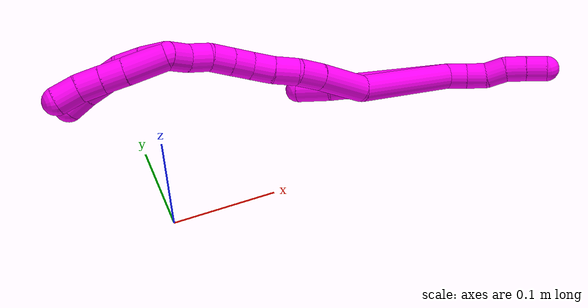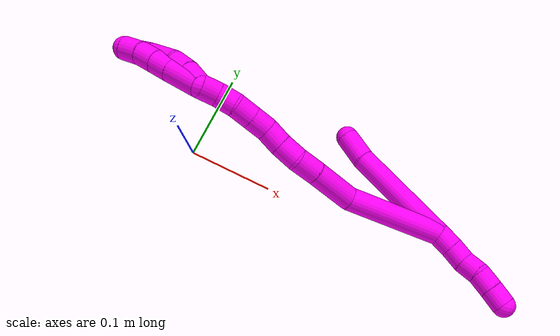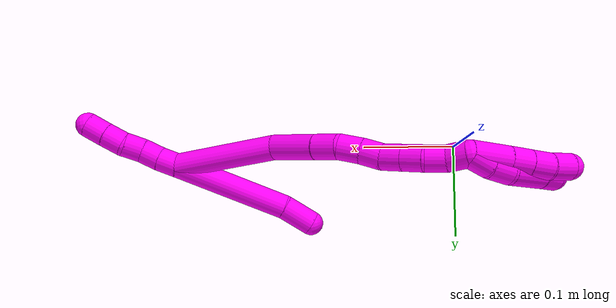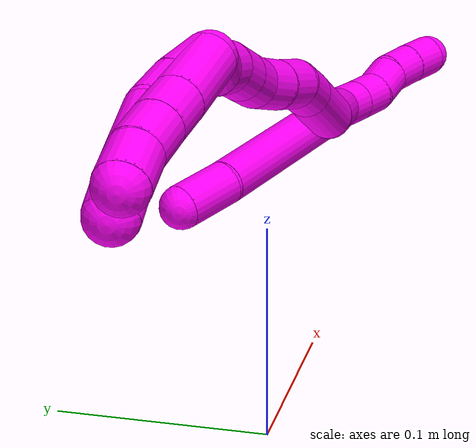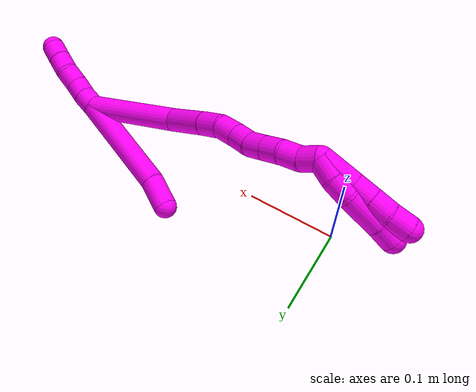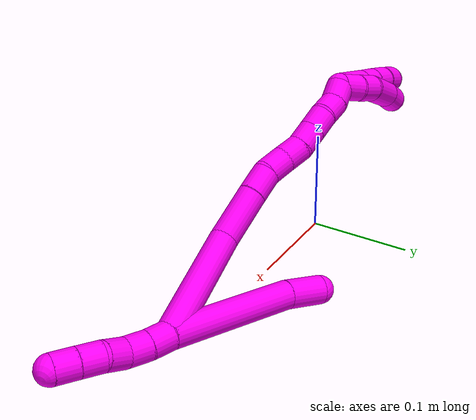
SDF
<sdf version="1.7">
 <world name="default">
  <model name="10">
   <static>0</static>
   <link name="10">
    <collision name="collision-cylinder-e_1_2_8">
     <pose>-0.012785 0.02831 -0.049547 -2.62249 -0.220404 0.789632</pose>
     <geometry><cylinder><radius>0.0125</radius><length>0.116959</length></cylinder></geometry>
     <surface>
      <friction><ode><mu>1.16</mu><mu2>1.16</mu2><slip1>0</slip1><slip2>0</slip2></ode></friction>
      <contact><ode><kp>1e+06</kp><kd>1</kd><max_vel>0</max_vel><min_depth>0.001</min_depth></ode></contact>
     </surface>
    </collision>
    <visual name="visual-cylinder-e_1_2_8">
     <pose>-0.012785 0.02831 -0.049547 -2.62249 -0.220404 0.789632</pose>
     <geometry><cylinder><radius>0.0125</radius><length>0.116959</length></cylinder></geometry>
     <material><ambient>1 0 0.964706 1</ambient></material>
    </visual>
    <collision name="collision-cylinder-e_2_8_6">
     <pose>-0.029997 0.066822 -0.111312 -2.44583 -0.271275 0.719904</pose>
     <geometry><cylinder><radius>0.0125</radius><length>0.033041</length></cylinder></geometry>
     <surface>
      <friction><ode><mu>1.16</mu><mu2>1.16</mu2><slip1>0</slip1><slip2>0</slip2></ode></friction>
      <contact><ode><kp>1e+06</kp><kd>1</kd><max_vel>0</max_vel><min_depth>0.001</min_depth></ode></contact>
     </surface>
    </collision>
    <visual name="visual-cylinder-e_2_8_6">
     <pose>-0.029997 0.066822 -0.111312 -2.44583 -0.271275 0.719904</pose>
     <geometry><cylinder><radius>0.0125</radius><length>0.033041</length></cylinder></geometry>
     <material><ambient>1 0 0.964706 1</ambient></material>
    </visual>
    <collision name="collision-cylinder-e_1_2_9">
     <pose>0.00311 -0.003947 0.008646 0.428244 0.316248 0.069321</pose>
     <geometry><cylinder><radius>0.0125</radius><length>0.02</length></cylinder></geometry>
     <surface>
      <friction><ode><mu>1.16</mu><mu2>1.16</mu2><slip1>0</slip1><slip2>0</slip2></ode></friction>
      <contact><ode><kp>1e+06</kp><kd>1</kd><max_vel>0</max_vel><min_depth>0.001</min_depth></ode></contact>
     </surface>
    </collision>
    <visual name="visual-cylinder-e_1_2_9">
     <pose>0.00311 -0.003947 0.008646 0.428244 0.316248 0.069321</pose>
     <geometry><cylinder><radius>0.0125</radius><length>0.02</length></cylinder></geometry>
     <material><ambient>1 0 0.964706 1</ambient></material>
    </visual>
    <collision name="collision-cylinder-e_2_9_10">
     <pose>0.009231 -0.012901 0.025407 0.552857 0.305793 0.087378</pose>
     <geometry><cylinder><radius>0.0125</radius><length>0.02</length></cylinder></geometry>
     <surface>
      <friction><ode><mu>1.16</mu><mu2>1.16</mu2><slip1>0</slip1><slip2>0</slip2></ode></friction>
      <contact><ode><kp>1e+06</kp><kd>1</kd><max_vel>0</max_vel><min_depth>0.001</min_depth></ode></contact>
     </surface>
    </collision>
    <visual name="visual-cylinder-e_2_9_10">
     <pose>0.009231 -0.012901 0.025407 0.552857 0.305793 0.087378</pose>
     <geometry><cylinder><radius>0.0125</radius><length>0.02</length></cylinder></geometry>
     <material><ambient>1 0 0.964706 1</ambient></material>
    </visual>
    <collision name="collision-cylinder-e_3_10_11">
     <pose>0.012204 -0.023684 0.041686 0.615668 -0.003658 -0.001163</pose>
     <geometry><cylinder><radius>0.0125</radius><length>0.02</length></cylinder></geometry>
     <surface>
      <friction><ode><mu>1.16</mu><mu2>1.16</mu2><slip1>0</slip1><slip2>0</slip2></ode></friction>
      <contact><ode><kp>1e+06</kp><kd>1</kd><max_vel>0</max_vel><min_depth>0.001</min_depth></ode></contact>
     </surface>
    </collision>
    <visual name="visual-cylinder-e_3_10_11">
     <pose>0.012204 -0.023684 0.041686 0.615668 -0.003658 -0.001163</pose>
     <geometry><cylinder><radius>0.0125</radius><length>0.02</length></cylinder></geometry>
     <material><ambient>1 0 0.964706 1</ambient></material>
    </visual>
    <collision name="collision-cylinder-e_4_11_12">
     <pose>0.015019 -0.035054 0.057632 0.623374 0.289136 0.093742</pose>
     <geometry><cylinder><radius>0.0125</radius><length>0.02</length></cylinder></geometry>
     <surface>
      <friction><ode><mu>1.16</mu><mu2>1.16</mu2><slip1>0</slip1><slip2>0</slip2></ode></friction>
      <contact><ode><kp>1e+06</kp><kd>1</kd><max_vel>0</max_vel><min_depth>0.001</min_depth></ode></contact>
     </surface>
    </collision>
    <visual name="visual-cylinder-e_4_11_12">
     <pose>0.015019 -0.035054 0.057632 0.623374 0.289136 0.093742</pose>
     <geometry><cylinder><radius>0.0125</radius><length>0.02</length></cylinder></geometry>
     <material><ambient>1 0 0.964706 1</ambient></material>
    </visual>
    <collision name="collision-cylinder-e_5_12_5">
     <pose>0.021044 -0.046212 0.073095 0.626811 0.32296 0.105488</pose>
     <geometry><cylinder><radius>0.0125</radius><length>0.02</length></cylinder></geometry>
     <surface>
      <friction><ode><mu>1.16</mu><mu2>1.16</mu2><slip1>0</slip1><slip2>0</slip2></ode></friction>
      <contact><ode><kp>1e+06</kp><kd>1</kd><max_vel>0</max_vel><min_depth>0.001</min_depth></ode></contact>
     </surface>
    </collision>
    <visual name="visual-cylinder-e_5_12_5">
     <pose>0.021044 -0.046212 0.073095 0.626811 0.32296 0.105488</pose>
     <geometry><cylinder><radius>0.0125</radius><length>0.02</length></cylinder></geometry>
     <material><ambient>1 0 0.964706 1</ambient></material>
    </visual>
    <collision name="collision-cylinder-e_1_2_13">
     <pose>-0.008659 -0.006439 -0.051533 3.01729 -0.165218 -1.85255</pose>
     <geometry><cylinder><radius>0.0125</radius><length>0.105301</length></cylinder></geometry>
     <surface>
      <friction><ode><mu>1.16</mu><mu2>1.16</mu2><slip1>0</slip1><slip2>0</slip2></ode></friction>
      <contact><ode><kp>1e+06</kp><kd>1</kd><max_vel>0</max_vel><min_depth>0.001</min_depth></ode></contact>
     </surface>
    </collision>
    <visual name="visual-cylinder-e_1_2_13">
     <pose>-0.008659 -0.006439 -0.051533 3.01729 -0.165218 -1.85255</pose>
     <geometry><cylinder><radius>0.0125</radius><length>0.105301</length></cylinder></geometry>
     <material><ambient>1 0 0.964706 1</ambient></material>
    </visual>
    <collision name="collision-cylinder-e_2_13_14">
     <pose>-0.028931 -0.016551 -0.123507 2.96379 -0.509815 -2.48239</pose>
     <geometry><cylinder><radius>0.0125</radius><length>0.047589</length></cylinder></geometry>
     <surface>
      <friction><ode><mu>1.16</mu><mu2>1.16</mu2><slip1>0</slip1><slip2>0</slip2></ode></friction>
      <contact><ode><kp>1e+06</kp><kd>1</kd><max_vel>0</max_vel><min_depth>0.001</min_depth></ode></contact>
     </surface>
    </collision>
    <visual name="visual-cylinder-e_2_13_14">
     <pose>-0.028931 -0.016551 -0.123507 2.96379 -0.509815 -2.48239</pose>
     <geometry><cylinder><radius>0.0125</radius><length>0.047589</length></cylinder></geometry>
     <material><ambient>1 0 0.964706 1</ambient></material>
    </visual>
    <collision name="collision-cylinder-e_3_14_15">
     <pose>-0.045955 -0.021721 -0.154834 3.00492 -0.457669 -2.56999</pose>
     <geometry><cylinder><radius>0.0125</radius><length>0.024499</length></cylinder></geometry>
     <surface>
      <friction><ode><mu>1.16</mu><mu2>1.16</mu2><slip1>0</slip1><slip2>0</slip2></ode></friction>
      <contact><ode><kp>1e+06</kp><kd>1</kd><max_vel>0</max_vel><min_depth>0.001</min_depth></ode></contact>
     </surface>
    </collision>
    <visual name="visual-cylinder-e_3_14_15">
     <pose>-0.045955 -0.021721 -0.154834 3.00492 -0.457669 -2.56999</pose>
     <geometry><cylinder><radius>0.0125</radius><length>0.024499</length></cylinder></geometry>
     <material><ambient>1 0 0.964706 1</ambient></material>
    </visual>
    <collision name="collision-cylinder-e_4_15_16">
     <pose>-0.055586 -0.021416 -0.175841 -2.96529 -0.389374 2.29887</pose>
     <geometry><cylinder><radius>0.0125</radius><length>0.022222</length></cylinder></geometry>
     <surface>
      <friction><ode><mu>1.16</mu><mu2>1.16</mu2><slip1>0</slip1><slip2>0</slip2></ode></friction>
      <contact><ode><kp>1e+06</kp><kd>1</kd><max_vel>0</max_vel><min_depth>0.001</min_depth></ode></contact>
     </surface>
    </collision>
    <visual name="visual-cylinder-e_4_15_16">
     <pose>-0.055586 -0.021416 -0.175841 -2.96529 -0.389374 2.29887</pose>
     <geometry><cylinder><radius>0.0125</radius><length>0.022222</length></cylinder></geometry>
     <material><ambient>1 0 0.964706 1</ambient></material>
    </visual>
    <collision name="collision-cylinder-e_5_16_17">
     <pose>-0.064742 -0.017822 -0.194656 -2.93852 -0.507646 2.39311</pose>
     <geometry><cylinder><radius>0.0125</radius><length>0.020317</length></cylinder></geometry>
     <surface>
      <friction><ode><mu>1.16</mu><mu2>1.16</mu2><slip1>0</slip1><slip2>0</slip2></ode></friction>
      <contact><ode><kp>1e+06</kp><kd>1</kd><max_vel>0</max_vel><min_depth>0.001</min_depth></ode></contact>
     </surface>
    </collision>
    <visual name="visual-cylinder-e_5_16_17">
     <pose>-0.064742 -0.017822 -0.194656 -2.93852 -0.507646 2.39311</pose>
     <geometry><cylinder><radius>0.0125</radius><length>0.020317</length></cylinder></geometry>
     <material><ambient>1 0 0.964706 1</ambient></material>
    </visual>
    <collision name="collision-cylinder-e_6_17_18">
     <pose>-0.074172 -0.016807 -0.212269 3.05485 -0.465099 -2.77914</pose>
     <geometry><cylinder><radius>0.0125</radius><length>0.020031</length></cylinder></geometry>
     <surface>
      <friction><ode><mu>1.16</mu><mu2>1.16</mu2><slip1>0</slip1><slip2>0</slip2></ode></friction>
      <contact><ode><kp>1e+06</kp><kd>1</kd><max_vel>0</max_vel><min_depth>0.001</min_depth></ode></contact>
     </surface>
    </collision>
    <visual name="visual-cylinder-e_6_17_18">
     <pose>-0.074172 -0.016807 -0.212269 3.05485 -0.465099 -2.77914</pose>
     <geometry><cylinder><radius>0.0125</radius><length>0.020031</length></cylinder></geometry>
     <material><ambient>1 0 0.964706 1</ambient></material>
    </visual>
    <collision name="collision-cylinder-e_7_18_19">
     <pose>-0.083166 -0.018414 -0.230094 3.04856 -0.466177 -2.75434</pose>
     <geometry><cylinder><radius>0.0125</radius><length>0.020028</length></cylinder></geometry>
     <surface>
      <friction><ode><mu>1.16</mu><mu2>1.16</mu2><slip1>0</slip1><slip2>0</slip2></ode></friction>
      <contact><ode><kp>1e+06</kp><kd>1</kd><max_vel>0</max_vel><min_depth>0.001</min_depth></ode></contact>
     </surface>
    </collision>
    <visual name="visual-cylinder-e_7_18_19">
     <pose>-0.083166 -0.018414 -0.230094 3.04856 -0.466177 -2.75434</pose>
     <geometry><cylinder><radius>0.0125</radius><length>0.020028</length></cylinder></geometry>
     <material><ambient>1 0 0.964706 1</ambient></material>
    </visual>
    <collision name="collision-cylinder-e_8_19_20">
     <pose>-0.090127 -0.018887 -0.248689 -3.10471 -0.248561 2.84842</pose>
     <geometry><cylinder><radius>0.0125</radius><length>0.020004</length></cylinder></geometry>
     <surface>
      <friction><ode><mu>1.16</mu><mu2>1.16</mu2><slip1>0</slip1><slip2>0</slip2></ode></friction>
      <contact><ode><kp>1e+06</kp><kd>1</kd><max_vel>0</max_vel><min_depth>0.001</min_depth></ode></contact>
     </surface>
    </collision>
    <visual name="visual-cylinder-e_8_19_20">
     <pose>-0.090127 -0.018887 -0.248689 -3.10471 -0.248561 2.84842</pose>
     <geometry><cylinder><radius>0.0125</radius><length>0.020004</length></cylinder></geometry>
     <material><ambient>1 0 0.964706 1</ambient></material>
    </visual>
    <collision name="collision-cylinder-e_9_20_1">
     <pose>-0.095858 -0.021474 -0.267362 2.8249 -0.332972 -1.62178</pose>
     <geometry><cylinder><radius>0.0125</radius><length>0.020008</length></cylinder></geometry>
     <surface>
      <friction><ode><mu>1.16</mu><mu2>1.16</mu2><slip1>0</slip1><slip2>0</slip2></ode></friction>
      <contact><ode><kp>1e+06</kp><kd>1</kd><max_vel>0</max_vel><min_depth>0.001</min_depth></ode></contact>
     </surface>
    </collision>
    <visual name="visual-cylinder-e_9_20_1">
     <pose>-0.095858 -0.021474 -0.267362 2.8249 -0.332972 -1.62178</pose>
     <geometry><cylinder><radius>0.0125</radius><length>0.020008</length></cylinder></geometry>
     <material><ambient>1 0 0.964706 1</ambient></material>
    </visual>
    <collision name="collision-cylinder-e_1_1_21">
     <pose>-0.098366 -0.01701 -0.293439 -2.7326 0.040847 -0.196348</pose>
     <geometry><cylinder><radius>0.0125</radius><length>0.037291</length></cylinder></geometry>
     <surface>
      <friction><ode><mu>1.16</mu><mu2>1.16</mu2><slip1>0</slip1><slip2>0</slip2></ode></friction>
      <contact><ode><kp>1e+06</kp><kd>1</kd><max_vel>0</max_vel><min_depth>0.001</min_depth></ode></contact>
     </surface>
    </collision>
    <visual name="visual-cylinder-e_1_1_21">
     <pose>-0.098366 -0.01701 -0.293439 -2.7326 0.040847 -0.196348</pose>
     <geometry><cylinder><radius>0.0125</radius><length>0.037291</length></cylinder></geometry>
     <material><ambient>1 0 0.964706 1</ambient></material>
    </visual>
    <collision name="collision-cylinder-e_2_21_22">
     <pose>-0.09745 -0.005559 -0.31991 -2.73465 0.015131 -0.073301</pose>
     <geometry><cylinder><radius>0.0125</radius><length>0.020424</length></cylinder></geometry>
     <surface>
      <friction><ode><mu>1.16</mu><mu2>1.16</mu2><slip1>0</slip1><slip2>0</slip2></ode></friction>
      <contact><ode><kp>1e+06</kp><kd>1</kd><max_vel>0</max_vel><min_depth>0.001</min_depth></ode></contact>
     </surface>
    </collision>
    <visual name="visual-cylinder-e_2_21_22">
     <pose>-0.09745 -0.005559 -0.31991 -2.73465 0.015131 -0.073301</pose>
     <geometry><cylinder><radius>0.0125</radius><length>0.020424</length></cylinder></geometry>
     <material><ambient>1 0 0.964706 1</ambient></material>
    </visual>
    <collision name="collision-cylinder-e_3_22_23">
     <pose>-0.096927 0.002699 -0.338856 -2.72648 0.035204 -0.166797</pose>
     <geometry><cylinder><radius>0.0125</radius><length>0.020927</length></cylinder></geometry>
     <surface>
      <friction><ode><mu>1.16</mu><mu2>1.16</mu2><slip1>0</slip1><slip2>0</slip2></ode></friction>
      <contact><ode><kp>1e+06</kp><kd>1</kd><max_vel>0</max_vel><min_depth>0.001</min_depth></ode></contact>
     </surface>
    </collision>
    <visual name="visual-cylinder-e_3_22_23">
     <pose>-0.096927 0.002699 -0.338856 -2.72648 0.035204 -0.166797</pose>
     <geometry><cylinder><radius>0.0125</radius><length>0.020927</length></cylinder></geometry>
     <material><ambient>1 0 0.964706 1</ambient></material>
    </visual>
    <collision name="collision-cylinder-e_4_23_4">
     <pose>-0.094547 0.010638 -0.35823 -2.77889 0.189538 -0.956492</pose>
     <geometry><cylinder><radius>0.0125</radius><length>0.021357</length></cylinder></geometry>
     <surface>
      <friction><ode><mu>1.16</mu><mu2>1.16</mu2><slip1>0</slip1><slip2>0</slip2></ode></friction>
      <contact><ode><kp>1e+06</kp><kd>1</kd><max_vel>0</max_vel><min_depth>0.001</min_depth></ode></contact>
     </surface>
    </collision>
    <visual name="visual-cylinder-e_4_23_4">
     <pose>-0.094547 0.010638 -0.35823 -2.77889 0.189538 -0.956492</pose>
     <geometry><cylinder><radius>0.0125</radius><length>0.021357</length></cylinder></geometry>
     <material><ambient>1 0 0.964706 1</ambient></material>
    </visual>
    <collision name="collision-cylinder-e_1_1_24">
     <pose>-0.100445 -0.01736 -0.284771 -2.44426 -0.119321 0.32572</pose>
     <geometry><cylinder><radius>0.0125</radius><length>0.02214</length></cylinder></geometry>
     <surface>
      <friction><ode><mu>1.16</mu><mu2>1.16</mu2><slip1>0</slip1><slip2>0</slip2></ode></friction>
      <contact><ode><kp>1e+06</kp><kd>1</kd><max_vel>0</max_vel><min_depth>0.001</min_depth></ode></contact>
     </surface>
    </collision>
    <visual name="visual-cylinder-e_1_1_24">
     <pose>-0.100445 -0.01736 -0.284771 -2.44426 -0.119321 0.32572</pose>
     <geometry><cylinder><radius>0.0125</radius><length>0.02214</length></cylinder></geometry>
     <material><ambient>1 0 0.964706 1</ambient></material>
    </visual>
    <collision name="collision-cylinder-e_2_24_25">
     <pose>-0.101735 -0.004882 -0.302105 -2.595 0.002682 -0.009567</pose>
     <geometry><cylinder><radius>0.0125</radius><length>0.020856</length></cylinder></geometry>
     <surface>
      <friction><ode><mu>1.16</mu><mu2>1.16</mu2><slip1>0</slip1><slip2>0</slip2></ode></friction>
      <contact><ode><kp>1e+06</kp><kd>1</kd><max_vel>0</max_vel><min_depth>0.001</min_depth></ode></contact>
     </surface>
    </collision>
    <visual name="visual-cylinder-e_2_24_25">
     <pose>-0.101735 -0.004882 -0.302105 -2.595 0.002682 -0.009567</pose>
     <geometry><cylinder><radius>0.0125</radius><length>0.020856</length></cylinder></geometry>
     <material><ambient>1 0 0.964706 1</ambient></material>
    </visual>
    <collision name="collision-cylinder-e_3_25_26">
     <pose>-0.096775 0.009599 -0.326335 -2.60752 0.270328 -0.922662</pose>
     <geometry><cylinder><radius>0.0125</radius><length>0.036942</length></cylinder></geometry>
     <surface>
      <friction><ode><mu>1.16</mu><mu2>1.16</mu2><slip1>0</slip1><slip2>0</slip2></ode></friction>
      <contact><ode><kp>1e+06</kp><kd>1</kd><max_vel>0</max_vel><min_depth>0.001</min_depth></ode></contact>
     </surface>
    </collision>
    <visual name="visual-cylinder-e_3_25_26">
     <pose>-0.096775 0.009599 -0.326335 -2.60752 0.270328 -0.922662</pose>
     <geometry><cylinder><radius>0.0125</radius><length>0.036942</length></cylinder></geometry>
     <material><ambient>1 0 0.964706 1</ambient></material>
    </visual>
    <collision name="collision-cylinder-e_4_26_3">
     <pose>-0.088278 0.024084 -0.349305 -2.52474 0.363253 -1.04583</pose>
     <geometry><cylinder><radius>0.0125</radius><length>0.020063</length></cylinder></geometry>
     <surface>
      <friction><ode><mu>1.16</mu><mu2>1.16</mu2><slip1>0</slip1><slip2>0</slip2></ode></friction>
      <contact><ode><kp>1e+06</kp><kd>1</kd><max_vel>0</max_vel><min_depth>0.001</min_depth></ode></contact>
     </surface>
    </collision>
    <visual name="visual-cylinder-e_4_26_3">
     <pose>-0.088278 0.024084 -0.349305 -2.52474 0.363253 -1.04583</pose>
     <geometry><cylinder><radius>0.0125</radius><length>0.020063</length></cylinder></geometry>
     <material><ambient>1 0 0.964706 1</ambient></material>
    </visual>
    <collision name="collision-sphere-3">
     <pose>-0.084713 0.029509 -0.356953 0 -0 0</pose>
     <geometry><sphere><radius>0.0125</radius></sphere></geometry>
     <surface>
      <friction><ode><mu>1.16</mu><mu2>1.16</mu2><slip1>0</slip1><slip2>0</slip2></ode></friction>
      <contact><ode><kp>1e+06</kp><kd>1</kd><max_vel>0</max_vel><min_depth>0.001</min_depth></ode></contact>
     </surface>
    </collision>
    <visual name="visual-sphere-3">
     <pose>-0.084713 0.029509 -0.356953 0 -0 0</pose>
     <geometry><sphere><radius>0.0125</radius></sphere></geometry>
     <material><ambient>1 0 0.964706 1</ambient></material>
    </visual>
    <collision name="collision-sphere-26">
     <pose>-0.091842 0.01866 -0.341656 0 -0 0</pose>
     <geometry><sphere><radius>0.0125</radius></sphere></geometry>
     <surface>
      <friction><ode><mu>1.16</mu><mu2>1.16</mu2><slip1>0</slip1><slip2>0</slip2></ode></friction>
      <contact><ode><kp>1e+06</kp><kd>1</kd><max_vel>0</max_vel><min_depth>0.001</min_depth></ode></contact>
     </surface>
    </collision>
    <visual name="visual-sphere-26">
     <pose>-0.091842 0.01866 -0.341656 0 -0 0</pose>
     <geometry><sphere><radius>0.0125</radius></sphere></geometry>
     <material><ambient>1 0 0.964706 1</ambient></material>
    </visual>
    <collision name="collision-sphere-25">
     <pose>-0.101707 0.000538 -0.311014 0 -0 0</pose>
     <geometry><sphere><radius>0.0125</radius></sphere></geometry>
     <surface>
      <friction><ode><mu>1.16</mu><mu2>1.16</mu2><slip1>0</slip1><slip2>0</slip2></ode></friction>
      <contact><ode><kp>1e+06</kp><kd>1</kd><max_vel>0</max_vel><min_depth>0.001</min_depth></ode></contact>
     </surface>
    </collision>
    <visual name="visual-sphere-25">
     <pose>-0.101707 0.000538 -0.311014 0 -0 0</pose>
     <geometry><sphere><radius>0.0125</radius></sphere></geometry>
     <material><ambient>1 0 0.964706 1</ambient></material>
    </visual>
    <collision name="collision-sphere-24">
     <pose>-0.101763 -0.010302 -0.293197 0 -0 0</pose>
     <geometry><sphere><radius>0.0125</radius></sphere></geometry>
     <surface>
      <friction><ode><mu>1.16</mu><mu2>1.16</mu2><slip1>0</slip1><slip2>0</slip2></ode></friction>
      <contact><ode><kp>1e+06</kp><kd>1</kd><max_vel>0</max_vel><min_depth>0.001</min_depth></ode></contact>
     </surface>
    </collision>
    <visual name="visual-sphere-24">
     <pose>-0.101763 -0.010302 -0.293197 0 -0 0</pose>
     <geometry><sphere><radius>0.0125</radius></sphere></geometry>
     <material><ambient>1 0 0.964706 1</ambient></material>
    </visual>
    <collision name="collision-sphere-4">
     <pose>-0.092535 0.014359 -0.368035 0 -0 0</pose>
     <geometry><sphere><radius>0.0125</radius></sphere></geometry>
     <surface>
      <friction><ode><mu>1.16</mu><mu2>1.16</mu2><slip1>0</slip1><slip2>0</slip2></ode></friction>
      <contact><ode><kp>1e+06</kp><kd>1</kd><max_vel>0</max_vel><min_depth>0.001</min_depth></ode></contact>
     </surface>
    </collision>
    <visual name="visual-sphere-4">
     <pose>-0.092535 0.014359 -0.368035 0 -0 0</pose>
     <geometry><sphere><radius>0.0125</radius></sphere></geometry>
     <material><ambient>1 0 0.964706 1</ambient></material>
    </visual>
    <collision name="collision-sphere-23">
     <pose>-0.096559 0.006917 -0.348425 0 -0 0</pose>
     <geometry><sphere><radius>0.0125</radius></sphere></geometry>
     <surface>
      <friction><ode><mu>1.16</mu><mu2>1.16</mu2><slip1>0</slip1><slip2>0</slip2></ode></friction>
      <contact><ode><kp>1e+06</kp><kd>1</kd><max_vel>0</max_vel><min_depth>0.001</min_depth></ode></contact>
     </surface>
    </collision>
    <visual name="visual-sphere-23">
     <pose>-0.096559 0.006917 -0.348425 0 -0 0</pose>
     <geometry><sphere><radius>0.0125</radius></sphere></geometry>
     <material><ambient>1 0 0.964706 1</ambient></material>
    </visual>
    <collision name="collision-sphere-22">
     <pose>-0.097296 -0.001518 -0.329287 0 -0 0</pose>
     <geometry><sphere><radius>0.0125</radius></sphere></geometry>
     <surface>
      <friction><ode><mu>1.16</mu><mu2>1.16</mu2><slip1>0</slip1><slip2>0</slip2></ode></friction>
      <contact><ode><kp>1e+06</kp><kd>1</kd><max_vel>0</max_vel><min_depth>0.001</min_depth></ode></contact>
     </surface>
    </collision>
    <visual name="visual-sphere-22">
     <pose>-0.097296 -0.001518 -0.329287 0 -0 0</pose>
     <geometry><sphere><radius>0.0125</radius></sphere></geometry>
     <material><ambient>1 0 0.964706 1</ambient></material>
    </visual>
    <collision name="collision-sphere-21">
     <pose>-0.097605 -0.009601 -0.310533 0 -0 0</pose>
     <geometry><sphere><radius>0.0125</radius></sphere></geometry>
     <surface>
      <friction><ode><mu>1.16</mu><mu2>1.16</mu2><slip1>0</slip1><slip2>0</slip2></ode></friction>
      <contact><ode><kp>1e+06</kp><kd>1</kd><max_vel>0</max_vel><min_depth>0.001</min_depth></ode></contact>
     </surface>
    </collision>
    <visual name="visual-sphere-21">
     <pose>-0.097605 -0.009601 -0.310533 0 -0 0</pose>
     <geometry><sphere><radius>0.0125</radius></sphere></geometry>
     <material><ambient>1 0 0.964706 1</ambient></material>
    </visual>
    <collision name="collision-sphere-1">
     <pose>-0.099128 -0.024419 -0.276346 0 -0 0</pose>
     <geometry><sphere><radius>0.0125</radius></sphere></geometry>
     <surface>
      <friction><ode><mu>1.16</mu><mu2>1.16</mu2><slip1>0</slip1><slip2>0</slip2></ode></friction>
      <contact><ode><kp>1e+06</kp><kd>1</kd><max_vel>0</max_vel><min_depth>0.001</min_depth></ode></contact>
     </surface>
    </collision>
    <visual name="visual-sphere-1">
     <pose>-0.099128 -0.024419 -0.276346 0 -0 0</pose>
     <geometry><sphere><radius>0.0125</radius></sphere></geometry>
     <material><ambient>1 0 0.964706 1</ambient></material>
    </visual>
    <collision name="collision-sphere-11">
     <pose>0.012168 -0.029459 0.04985 0 -0 0</pose>
     <geometry><sphere><radius>0.0125</radius></sphere></geometry>
     <surface>
      <friction><ode><mu>1.16</mu><mu2>1.16</mu2><slip1>0</slip1><slip2>0</slip2></ode></friction>
      <contact><ode><kp>1e+06</kp><kd>1</kd><max_vel>0</max_vel><min_depth>0.001</min_depth></ode></contact>
     </surface>
    </collision>
    <visual name="visual-sphere-11">
     <pose>0.012168 -0.029459 0.04985 0 -0 0</pose>
     <geometry><sphere><radius>0.0125</radius></sphere></geometry>
     <material><ambient>1 0 0.964706 1</ambient></material>
    </visual>
    <collision name="collision-sphere-10">
     <pose>0.012241 -0.017909 0.033523 0 -0 0</pose>
     <geometry><sphere><radius>0.0125</radius></sphere></geometry>
     <surface>
      <friction><ode><mu>1.16</mu><mu2>1.16</mu2><slip1>0</slip1><slip2>0</slip2></ode></friction>
      <contact><ode><kp>1e+06</kp><kd>1</kd><max_vel>0</max_vel><min_depth>0.001</min_depth></ode></contact>
     </surface>
    </collision>
    <visual name="visual-sphere-10">
     <pose>0.012241 -0.017909 0.033523 0 -0 0</pose>
     <geometry><sphere><radius>0.0125</radius></sphere></geometry>
     <material><ambient>1 0 0.964706 1</ambient></material>
    </visual>
    <collision name="collision-sphere-6">
     <pose>-0.034424 0.077024 -0.123528 0 -0 0</pose>
     <geometry><sphere><radius>0.0125</radius></sphere></geometry>
     <surface>
      <friction><ode><mu>1.16</mu><mu2>1.16</mu2><slip1>0</slip1><slip2>0</slip2></ode></friction>
      <contact><ode><kp>1e+06</kp><kd>1</kd><max_vel>0</max_vel><min_depth>0.001</min_depth></ode></contact>
     </surface>
    </collision>
    <visual name="visual-sphere-6">
     <pose>-0.034424 0.077024 -0.123528 0 -0 0</pose>
     <geometry><sphere><radius>0.0125</radius></sphere></geometry>
     <material><ambient>1 0 0.964706 1</ambient></material>
    </visual>
    <collision name="collision-sphere-9">
     <pose>0.00622 -0.007894 0.017292 0 -0 0</pose>
     <geometry><sphere><radius>0.0125</radius></sphere></geometry>
     <surface>
      <friction><ode><mu>1.16</mu><mu2>1.16</mu2><slip1>0</slip1><slip2>0</slip2></ode></friction>
      <contact><ode><kp>1e+06</kp><kd>1</kd><max_vel>0</max_vel><min_depth>0.001</min_depth></ode></contact>
     </surface>
    </collision>
    <visual name="visual-sphere-9">
     <pose>0.00622 -0.007894 0.017292 0 -0 0</pose>
     <geometry><sphere><radius>0.0125</radius></sphere></geometry>
     <material><ambient>1 0 0.964706 1</ambient></material>
    </visual>
    <collision name="collision-sphere-2">
     <geometry><sphere><radius>0.0125</radius></sphere></geometry>
     <surface>
      <friction><ode><mu>1.16</mu><mu2>1.16</mu2><slip1>0</slip1><slip2>0</slip2></ode></friction>
      <contact><ode><kp>1e+06</kp><kd>1</kd><max_vel>0</max_vel><min_depth>0.001</min_depth></ode></contact>
     </surface>
    </collision>
    <visual name="visual-sphere-2">
     <geometry><sphere><radius>0.0125</radius></sphere></geometry>
     <material><ambient>1 0 0.964706 1</ambient></material>
    </visual>
    <collision name="collision-sphere-19">
     <pose>-0.087667 -0.019245 -0.239001 0 -0 0</pose>
     <geometry><sphere><radius>0.0125</radius></sphere></geometry>
     <surface>
      <friction><ode><mu>1.16</mu><mu2>1.16</mu2><slip1>0</slip1><slip2>0</slip2></ode></friction>
      <contact><ode><kp>1e+06</kp><kd>1</kd><max_vel>0</max_vel><min_depth>0.001</min_depth></ode></contact>
     </surface>
    </collision>
    <visual name="visual-sphere-19">
     <pose>-0.087667 -0.019245 -0.239001 0 -0 0</pose>
     <geometry><sphere><radius>0.0125</radius></sphere></geometry>
     <material><ambient>1 0 0.964706 1</ambient></material>
    </visual>
    <collision name="collision-sphere-8">
     <pose>-0.02557 0.05662 -0.099095 0 -0 0</pose>
     <geometry><sphere><radius>0.0125</radius></sphere></geometry>
     <surface>
      <friction><ode><mu>1.16</mu><mu2>1.16</mu2><slip1>0</slip1><slip2>0</slip2></ode></friction>
      <contact><ode><kp>1e+06</kp><kd>1</kd><max_vel>0</max_vel><min_depth>0.001</min_depth></ode></contact>
     </surface>
    </collision>
    <visual name="visual-sphere-8">
     <pose>-0.02557 0.05662 -0.099095 0 -0 0</pose>
     <geometry><sphere><radius>0.0125</radius></sphere></geometry>
     <material><ambient>1 0 0.964706 1</ambient></material>
    </visual>
    <collision name="collision-sphere-12">
     <pose>0.01787 -0.04065 0.065414 0 -0 0</pose>
     <geometry><sphere><radius>0.0125</radius></sphere></geometry>
     <surface>
      <friction><ode><mu>1.16</mu><mu2>1.16</mu2><slip1>0</slip1><slip2>0</slip2></ode></friction>
      <contact><ode><kp>1e+06</kp><kd>1</kd><max_vel>0</max_vel><min_depth>0.001</min_depth></ode></contact>
     </surface>
    </collision>
    <visual name="visual-sphere-12">
     <pose>0.01787 -0.04065 0.065414 0 -0 0</pose>
     <geometry><sphere><radius>0.0125</radius></sphere></geometry>
     <material><ambient>1 0 0.964706 1</ambient></material>
    </visual>
    <collision name="collision-sphere-5">
     <pose>0.024218 -0.051775 0.080775 0 -0 0</pose>
     <geometry><sphere><radius>0.0125</radius></sphere></geometry>
     <surface>
      <friction><ode><mu>1.16</mu><mu2>1.16</mu2><slip1>0</slip1><slip2>0</slip2></ode></friction>
      <contact><ode><kp>1e+06</kp><kd>1</kd><max_vel>0</max_vel><min_depth>0.001</min_depth></ode></contact>
     </surface>
    </collision>
    <visual name="visual-sphere-5">
     <pose>0.024218 -0.051775 0.080775 0 -0 0</pose>
     <geometry><sphere><radius>0.0125</radius></sphere></geometry>
     <material><ambient>1 0 0.964706 1</ambient></material>
    </visual>
    <collision name="collision-sphere-13">
     <pose>-0.017318 -0.012877 -0.103065 0 -0 0</pose>
     <geometry><sphere><radius>0.0125</radius></sphere></geometry>
     <surface>
      <friction><ode><mu>1.16</mu><mu2>1.16</mu2><slip1>0</slip1><slip2>0</slip2></ode></friction>
      <contact><ode><kp>1e+06</kp><kd>1</kd><max_vel>0</max_vel><min_depth>0.001</min_depth></ode></contact>
     </surface>
    </collision>
    <visual name="visual-sphere-13">
     <pose>-0.017318 -0.012877 -0.103065 0 -0 0</pose>
     <geometry><sphere><radius>0.0125</radius></sphere></geometry>
     <material><ambient>1 0 0.964706 1</ambient></material>
    </visual>
    <collision name="collision-sphere-14">
     <pose>-0.040543 -0.020224 -0.143948 0 -0 0</pose>
     <geometry><sphere><radius>0.0125</radius></sphere></geometry>
     <surface>
      <friction><ode><mu>1.16</mu><mu2>1.16</mu2><slip1>0</slip1><slip2>0</slip2></ode></friction>
      <contact><ode><kp>1e+06</kp><kd>1</kd><max_vel>0</max_vel><min_depth>0.001</min_depth></ode></contact>
     </surface>
    </collision>
    <visual name="visual-sphere-14">
     <pose>-0.040543 -0.020224 -0.143948 0 -0 0</pose>
     <geometry><sphere><radius>0.0125</radius></sphere></geometry>
     <material><ambient>1 0 0.964706 1</ambient></material>
    </visual>
    <collision name="collision-sphere-15">
     <pose>-0.051368 -0.023218 -0.16572 0 -0 0</pose>
     <geometry><sphere><radius>0.0125</radius></sphere></geometry>
     <surface>
      <friction><ode><mu>1.16</mu><mu2>1.16</mu2><slip1>0</slip1><slip2>0</slip2></ode></friction>
      <contact><ode><kp>1e+06</kp><kd>1</kd><max_vel>0</max_vel><min_depth>0.001</min_depth></ode></contact>
     </surface>
    </collision>
    <visual name="visual-sphere-15">
     <pose>-0.051368 -0.023218 -0.16572 0 -0 0</pose>
     <geometry><sphere><radius>0.0125</radius></sphere></geometry>
     <material><ambient>1 0 0.964706 1</ambient></material>
    </visual>
    <collision name="collision-sphere-16">
     <pose>-0.059804 -0.019613 -0.185961 0 -0 0</pose>
     <geometry><sphere><radius>0.0125</radius></sphere></geometry>
     <surface>
      <friction><ode><mu>1.16</mu><mu2>1.16</mu2><slip1>0</slip1><slip2>0</slip2></ode></friction>
      <contact><ode><kp>1e+06</kp><kd>1</kd><max_vel>0</max_vel><min_depth>0.001</min_depth></ode></contact>
     </surface>
    </collision>
    <visual name="visual-sphere-16">
     <pose>-0.059804 -0.019613 -0.185961 0 -0 0</pose>
     <geometry><sphere><radius>0.0125</radius></sphere></geometry>
     <material><ambient>1 0 0.964706 1</ambient></material>
    </visual>
    <collision name="collision-sphere-17">
     <pose>-0.06968 -0.016032 -0.203351 0 -0 0</pose>
     <geometry><sphere><radius>0.0125</radius></sphere></geometry>
     <surface>
      <friction><ode><mu>1.16</mu><mu2>1.16</mu2><slip1>0</slip1><slip2>0</slip2></ode></friction>
      <contact><ode><kp>1e+06</kp><kd>1</kd><max_vel>0</max_vel><min_depth>0.001</min_depth></ode></contact>
     </surface>
    </collision>
    <visual name="visual-sphere-17">
     <pose>-0.06968 -0.016032 -0.203351 0 -0 0</pose>
     <geometry><sphere><radius>0.0125</radius></sphere></geometry>
     <material><ambient>1 0 0.964706 1</ambient></material>
    </visual>
    <collision name="collision-sphere-18">
     <pose>-0.078664 -0.017583 -0.221187 0 -0 0</pose>
     <geometry><sphere><radius>0.0125</radius></sphere></geometry>
     <surface>
      <friction><ode><mu>1.16</mu><mu2>1.16</mu2><slip1>0</slip1><slip2>0</slip2></ode></friction>
      <contact><ode><kp>1e+06</kp><kd>1</kd><max_vel>0</max_vel><min_depth>0.001</min_depth></ode></contact>
     </surface>
    </collision>
    <visual name="visual-sphere-18">
     <pose>-0.078664 -0.017583 -0.221187 0 -0 0</pose>
     <geometry><sphere><radius>0.0125</radius></sphere></geometry>
     <material><ambient>1 0 0.964706 1</ambient></material>
    </visual>
    <collision name="collision-sphere-20">
     <pose>-0.092588 -0.01853 -0.258377 0 -0 0</pose>
     <geometry><sphere><radius>0.0125</radius></sphere></geometry>
     <surface>
      <friction><ode><mu>1.16</mu><mu2>1.16</mu2><slip1>0</slip1><slip2>0</slip2></ode></friction>
      <contact><ode><kp>1e+06</kp><kd>1</kd><max_vel>0</max_vel><min_depth>0.001</min_depth></ode></contact>
     </surface>
    </collision>
    <visual name="visual-sphere-20">
     <pose>-0.092588 -0.01853 -0.258377 0 -0 0</pose>
     <geometry><sphere><radius>0.0125</radius></sphere></geometry>
     <material><ambient>1 0 0.964706 1</ambient></material>
    </visual>
    <inertial>
     <pose>-0.044679 -0.001838 -0.148501 0 -0 0</pose>
     <mass>0.75</mass>
     <inertia><ixx>6e-05</ixx><ixy>0</ixy><ixz>0</ixz><iyy>-4e-05</iyy><iyz>0</iyz><izz>-4.6e-05</izz></inertia>
    </inertial>
   </link>
   <pose>0.296042 0.025856 0.062427 -1.65737 0.837115 -1.47696</pose>
  </model>
 </world>
</sdf>
